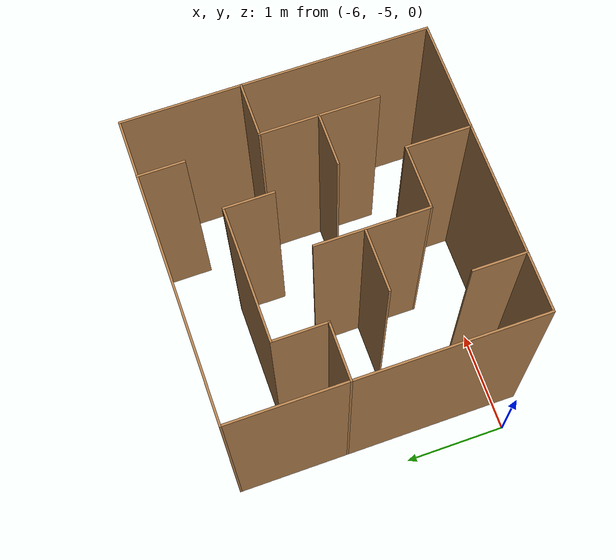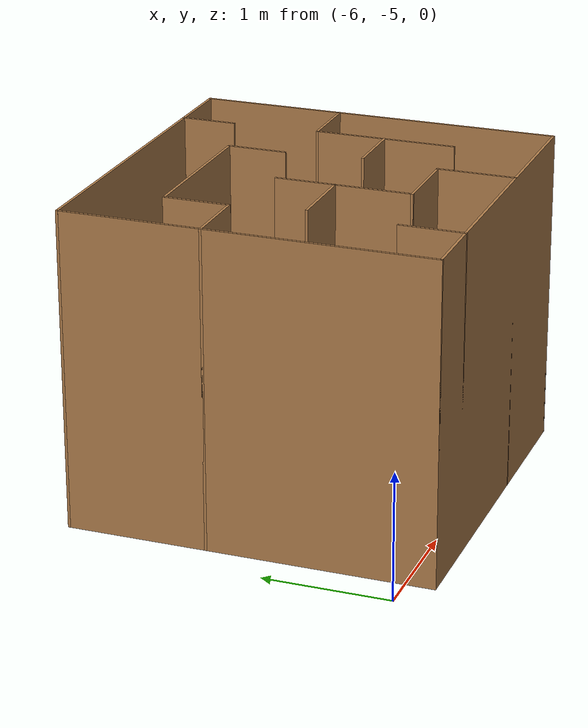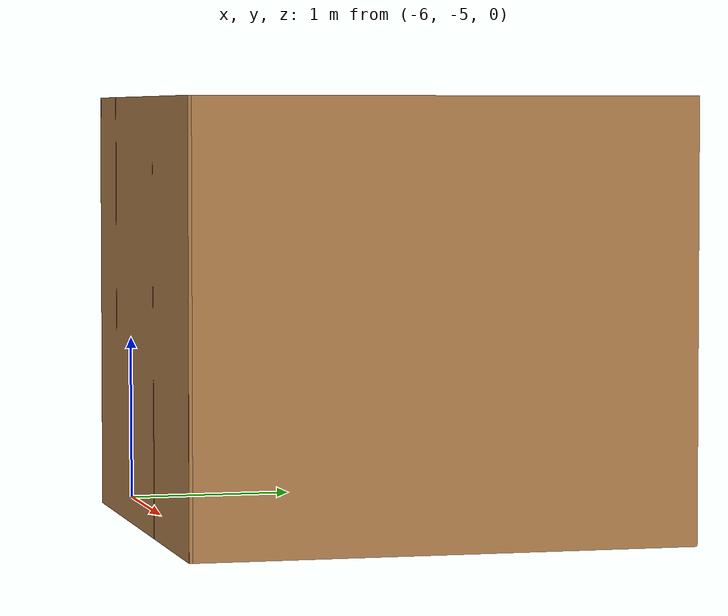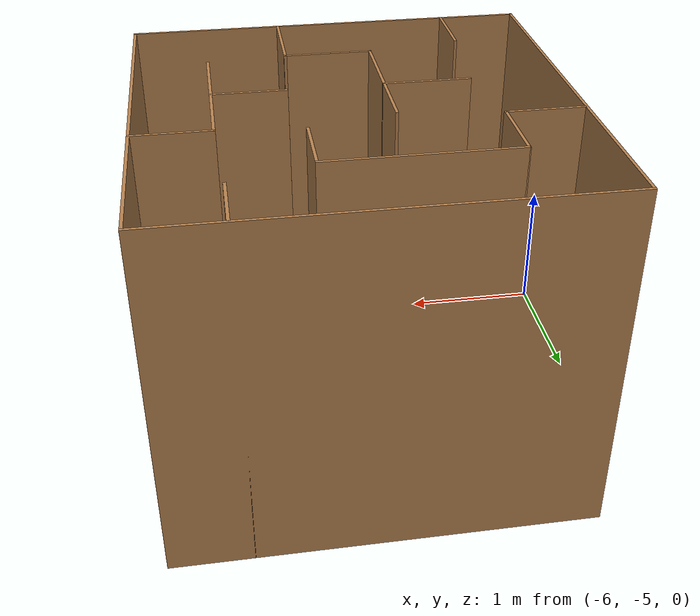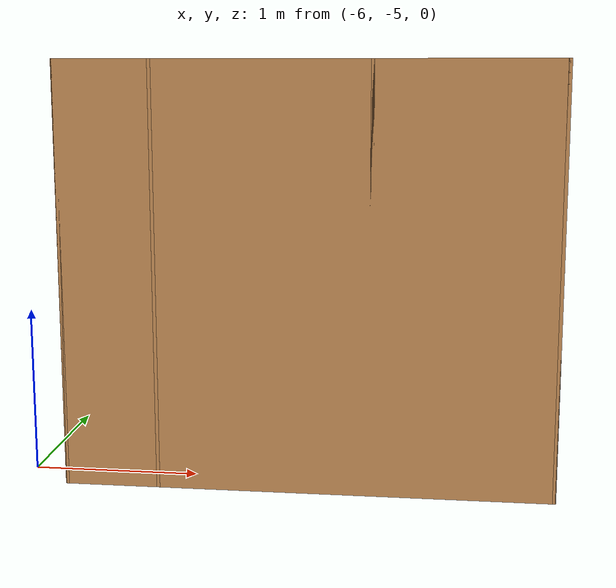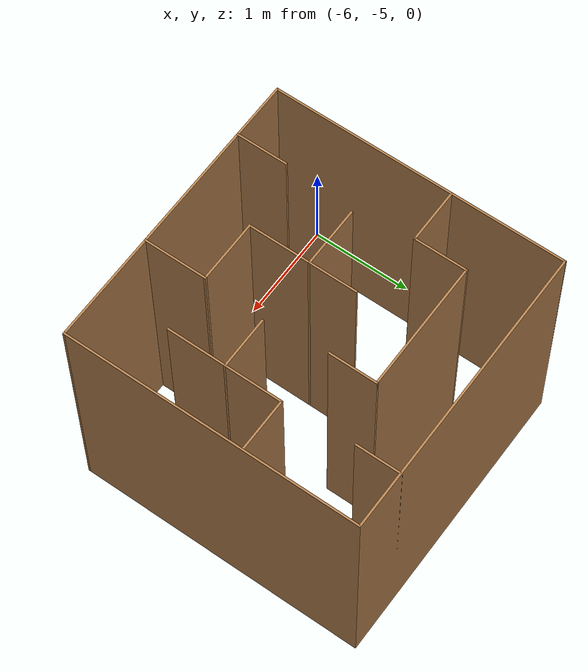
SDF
<?xml version='1.0'?>
<sdf version='1.7'>
  <model name='maze_world.world
'>
    <pose>-2.87 -2.615 0 0 -0 0</pose>
    <link name='Wall_11'>
      <collision name='Wall_11_Collision'>
        <geometry>
          <box>
            <size>2.87 0.02 2.5</size>
          </box>
        </geometry>
        <pose>0 0 1.25 0 -0 0</pose>
      </collision>
      <visual name='Wall_11_Visual'>
        <pose>0 0 1.25 0 -0 0</pose>
        <geometry>
          <box>
            <size>2.87 0.02 2.5</size>
          </box>
        </geometry>
        <material>
          <script>
            <uri>file://media/materials/scripts/gazebo.material</uri>
            <name>Gazebo/Wood</name>
          </script>
          <ambient>1 1 1 1</ambient>
        </material>
        <meta>
          <layer>0</layer>
        </meta>
      </visual>
      <pose>-0.01 -1.18 0 0 -0 -1.5708</pose>
    </link>
    <link name='Wall_18'>
      <collision name='Wall_18_Collision'>
        <geometry>
          <box>
            <size>0.62 0.02 2.5</size>
          </box>
        </geometry>
        <pose>0 0 1.25 0 -0 0</pose>
      </collision>
      <visual name='Wall_18_Visual'>
        <pose>0 0 1.25 0 -0 0</pose>
        <geometry>
          <box>
            <size>0.62 0.02 2.5</size>
          </box>
        </geometry>
        <material>
          <script>
            <uri>file://media/materials/scripts/gazebo.material</uri>
            <name>Gazebo/Wood</name>
          </script>
          <ambient>1 1 1 1</ambient>
        </material>
        <meta>
          <layer>0</layer>
        </meta>
      </visual>
      <pose>-1.06 -2.305 0 0 -0 1.5708</pose>
    </link>
    <link name='Wall_19'>
      <collision name='Wall_19_Collision'>
        <geometry>
          <box>
            <size>0.62 0.02 2.5</size>
          </box>
        </geometry>
        <pose>0 0 1.25 0 -0 0</pose>
      </collision>
      <visual name='Wall_19_Visual'>
        <pose>0 0 1.25 0 -0 0</pose>
        <geometry>
          <box>
            <size>0.62 0.02 2.5</size>
          </box>
        </geometry>
        <material>
          <script>
            <uri>file://media/materials/scripts/gazebo.material</uri>
            <name>Gazebo/Wood</name>
          </script>
          <ambient>1 1 1 1</ambient>
        </material>
        <meta>
          <layer>0</layer>
        </meta>
      </visual>
      <pose>-1.36 -2.005 0 0 -0 3.14159</pose>
    </link>
    <link name='Wall_20'>
      <collision name='Wall_20_Collision'>
        <geometry>
          <box>
            <size>1.07 0.02 2.5</size>
          </box>
        </geometry>
        <pose>0 0 1.25 0 -0 0</pose>
      </collision>
      <visual name='Wall_20_Visual'>
        <pose>0 0 1.25 0 -0 0</pose>
        <geometry>
          <box>
            <size>1.07 0.02 2.5</size>
          </box>
        </geometry>
        <material>
          <script>
            <uri>file://media/materials/scripts/gazebo.material</uri>
            <name>Gazebo/Wood</name>
          </script>
          <ambient>1 1 1 1</ambient>
        </material>
        <meta>
          <layer>0</layer>
        </meta>
      </visual>
      <pose>-1.66 -1.48 0 0 -0 1.5708</pose>
    </link>
    <link name='Wall_22'>
      <collision name='Wall_22_Collision'>
        <geometry>
          <box>
            <size>0.507 0.02 2.5</size>
          </box>
        </geometry>
        <pose>0 0 1.25 0 -0 0</pose>
      </collision>
      <visual name='Wall_22_Visual'>
        <pose>0 0 1.25 0 -0 0</pose>
        <geometry>
          <box>
            <size>0.507 0.02 2.5</size>
          </box>
        </geometry>
        <material>
          <script>
            <uri>file://media/materials/scripts/gazebo.material</uri>
            <name>Gazebo/Wood</name>
          </script>
          <ambient>1 1 1 1</ambient>
        </material>
        <meta>
          <layer>0</layer>
        </meta>
      </visual>
      <pose>-2.308 -2.3615 0 0 -0 1.5708</pose>
    </link>
    <link name='Wall_25'>
      <collision name='Wall_25_Collision'>
        <geometry>
          <box>
            <size>0.6 0.02 2.5</size>
          </box>
        </geometry>
        <pose>0 0 1.25 0 -0 0</pose>
      </collision>
      <visual name='Wall_25_Visual'>
        <pose>0 0 1.25 0 -0 0</pose>
        <geometry>
          <box>
            <size>0.6 0.02 2.5</size>
          </box>
        </geometry>
        <material>
          <script>
            <uri>file://media/materials/scripts/gazebo.material</uri>
            <name>Gazebo/Wood</name>
          </script>
          <ambient>1 1 1 1</ambient>
        </material>
        <meta>
          <layer>0</layer>
        </meta>
      </visual>
      <pose>-1.95 -1.411 0 0 -0 3.14159</pose>
    </link>
    <link name='Wall_33'>
      <collision name='Wall_33_Collision'>
        <geometry>
          <box>
            <size>0.546 0.02 2.5</size>
          </box>
        </geometry>
        <pose>0 0 1.25 0 -0 0</pose>
      </collision>
      <visual name='Wall_33_Visual'>
        <pose>0 0 1.25 0 -0 0</pose>
        <geometry>
          <box>
            <size>0.546 0.02 2.5</size>
          </box>
        </geometry>
        <material>
          <script>
            <uri>file://media/materials/scripts/gazebo.material</uri>
            <name>Gazebo/Wood</name>
          </script>
          <ambient>1 1 1 1</ambient>
        </material>
        <meta>
          <layer>0</layer>
        </meta>
      </visual>
      <pose>-2.597 -0.852 0 0 -0 0</pose>
    </link>
    <link name='Wall_35'>
      <collision name='Wall_35_Collision'>
        <geometry>
          <box>
            <size>0.52 0.02 2.5</size>
          </box>
        </geometry>
        <pose>0 0 1.25 0 -0 0</pose>
      </collision>
      <visual name='Wall_35_Visual'>
        <pose>0 0 1.25 0 -0 0</pose>
        <geometry>
          <box>
            <size>0.52 0.02 2.5</size>
          </box>
        </geometry>
        <material>
          <script>
            <uri>file://media/materials/scripts/gazebo.material</uri>
            <name>Gazebo/Wood</name>
          </script>
          <ambient>1 1 1 1</ambient>
        </material>
        <meta>
          <layer>0</layer>
        </meta>
      </visual>
      <pose>-2.334 -0.602 0 0 -0 1.5708</pose>
    </link>
    <link name='Wall_37'>
      <collision name='Wall_37_Collision'>
        <geometry>
          <box>
            <size>1.27 0.02 2.5</size>
          </box>
        </geometry>
        <pose>0 0 1.25 0 -0 0</pose>
      </collision>
      <visual name='Wall_37_Visual'>
        <pose>0 0 1.25 0 -0 0</pose>
        <geometry>
          <box>
            <size>1.27 0.02 2.5</size>
          </box>
        </geometry>
        <material>
          <script>
            <uri>file://media/materials/scripts/gazebo.material</uri>
            <name>Gazebo/Wood</name>
          </script>
          <ambient>1 1 1 1</ambient>
        </material>
        <meta>
          <layer>0</layer>
        </meta>
      </visual>
      <pose>-1.709 -0.352 0 0 -0 0</pose>
    </link>
    <link name='Wall_40'>
      <collision name='Wall_40_Collision'>
        <geometry>
          <box>
            <size>0.47 0.02 2.5</size>
          </box>
        </geometry>
        <pose>0 0 1.25 0 -0 0</pose>
      </collision>
      <visual name='Wall_40_Visual'>
        <pose>0 0 1.25 0 -0 0</pose>
        <geometry>
          <box>
            <size>0.47 0.02 2.5</size>
          </box>
        </geometry>
        <material>
          <script>
            <uri>file://media/materials/scripts/gazebo.material</uri>
            <name>Gazebo/Wood</name>
          </script>
          <ambient>1 1 1 1</ambient>
        </material>
        <meta>
          <layer>0</layer>
        </meta>
      </visual>
      <pose>-1.084 -0.577 0 0 -0 -1.5708</pose>
    </link>
    <link name='Wall_43'>
      <collision name='Wall_43_Collision'>
        <geometry>
          <box>
            <size>0.438 0.02 2.5</size>
          </box>
        </geometry>
        <pose>0 0 1.25 0 -0 0</pose>
      </collision>
      <visual name='Wall_43_Visual'>
        <pose>0 0 1.25 0 -0 0</pose>
        <geometry>
          <box>
            <size>0.438 0.02 2.5</size>
          </box>
        </geometry>
        <material>
          <script>
            <uri>file://media/materials/scripts/gazebo.material</uri>
            <name>Gazebo/Wood</name>
          </script>
          <ambient>1 1 1 1</ambient>
        </material>
        <meta>
          <layer>0</layer>
        </meta>
      </visual>
      <pose>-0.553 0.036 0 0 -0 -1.5708</pose>
    </link>
    <link name='Wall_45'>
      <collision name='Wall_45_Collision'>
        <geometry>
          <box>
            <size>0.529 0.02 2.5</size>
          </box>
        </geometry>
        <pose>0 0 1.25 0 -0 0</pose>
      </collision>
      <visual name='Wall_45_Visual'>
        <pose>0 0 1.25 0 -0 0</pose>
        <geometry>
          <box>
            <size>0.529 0.02 2.5</size>
          </box>
        </geometry>
        <material>
          <script>
            <uri>file://media/materials/scripts/gazebo.material</uri>
            <name>Gazebo/Wood</name>
          </script>
          <ambient>1 1 1 1</ambient>
        </material>
        <meta>
          <layer>0</layer>
        </meta>
      </visual>
      <pose>-0.2645 -0.859 0 0 -0 3.14159</pose>
    </link>
    <link name='Wall_47'>
      <collision name='Wall_47_Collision'>
        <geometry>
          <box>
            <size>1.12 0.02 2.5</size>
          </box>
        </geometry>
        <pose>0 0 1.25 0 -0 0</pose>
      </collision>
      <visual name='Wall_47_Visual'>
        <pose>0 0 1.25 0 -0 0</pose>
        <geometry>
          <box>
            <size>1.12 0.02 2.5</size>
          </box>
        </geometry>
        <material>
          <script>
            <uri>file://media/materials/scripts/gazebo.material</uri>
            <name>Gazebo/Wood</name>
          </script>
          <ambient>1 1 1 1</ambient>
        </material>
        <meta>
          <layer>0</layer>
        </meta>
      </visual>
      <pose>-0.519 -1.409 0 0 -0 -1.5708</pose>
    </link>
    <link name='Wall_49'>
      <collision name='Wall_49_Collision'>
        <geometry>
          <box>
            <size>0.512 0.02 2.5</size>
          </box>
        </geometry>
        <pose>0 0 1.25 0 -0 0</pose>
      </collision>
      <visual name='Wall_49_Visual'>
        <pose>0 0 1.25 0 -0 0</pose>
        <geometry>
          <box>
            <size>0.512 0.02 2.5</size>
          </box>
        </geometry>
        <material>
          <script>
            <uri>file://media/materials/scripts/gazebo.material</uri>
            <name>Gazebo/Wood</name>
          </script>
          <ambient>1 1 1 1</ambient>
        </material>
        <meta>
          <layer>0</layer>
        </meta>
      </visual>
      <pose>-0.765 -1.404 0 0 -0 3.14159</pose>
    </link>
    <link name='Wall_55'>
      <collision name='Wall_55_Collision'>
        <geometry>
          <box>
            <size>2.87 0.02 2.5</size>
          </box>
        </geometry>
        <pose>0 0 1.25 0 -0 0</pose>
      </collision>
      <visual name='Wall_55_Visual'>
        <pose>0 0 1.25 0 -0 0</pose>
        <geometry>
          <box>
            <size>2.87 0.02 2.5</size>
          </box>
        </geometry>
        <material>
          <script>
            <uri>file://media/materials/scripts/gazebo.material</uri>
            <name>Gazebo/Wood</name>
          </script>
          <ambient>1 1 1 1</ambient>
        </material>
        <meta>
          <layer>0</layer>
        </meta>
      </visual>
      <pose>-1.435 0.245 0 0 -0 0</pose>
    </link>
    <link name='Wall_57'>
      <collision name='Wall_57_Collision'>
        <geometry>
          <box>
            <size>2.87 0.02 2.5</size>
          </box>
        </geometry>
        <pose>0 0 1.25 0 -0 0</pose>
      </collision>
      <visual name='Wall_57_Visual'>
        <pose>0 0 1.25 0 -0 0</pose>
        <geometry>
          <box>
            <size>2.87 0.02 2.5</size>
          </box>
        </geometry>
        <material>
          <script>
            <uri>file://media/materials/scripts/gazebo.material</uri>
            <name>Gazebo/Wood</name>
          </script>
          <ambient>1 1 1 1</ambient>
        </material>
        <meta>
          <layer>0</layer>
        </meta>
      </visual>
      <pose>-1.435 -2.605 0 0 -0 0</pose>
    </link>
    <link name='Wall_7'>
      <collision name='Wall_7_Collision'>
        <geometry>
          <box>
            <size>2.87 0.02 2.5</size>
          </box>
        </geometry>
        <pose>0 0 1.25 0 -0 0</pose>
      </collision>
      <visual name='Wall_7_Visual'>
        <pose>0 0 1.25 0 -0 0</pose>
        <geometry>
          <box>
            <size>2.87 0.02 2.5</size>
          </box>
        </geometry>
        <material>
          <script>
            <uri>file://media/materials/scripts/gazebo.material</uri>
            <name>Gazebo/Wood</name>
          </script>
          <ambient>1 1 1 1</ambient>
        </material>
        <meta>
          <layer>0</layer>
        </meta>
      </visual>
      <pose>-2.86 -1.18 0 0 -0 -1.5708</pose>
    </link>
    <static>1</static>
  </model>
</sdf>
